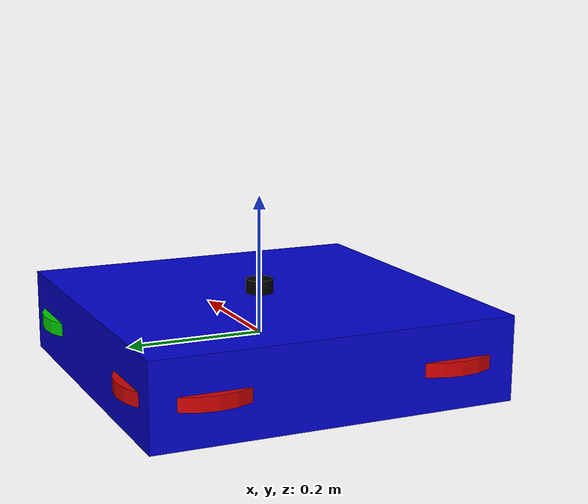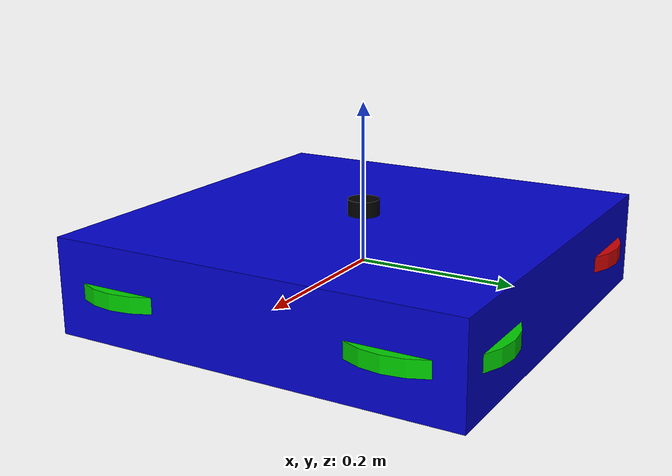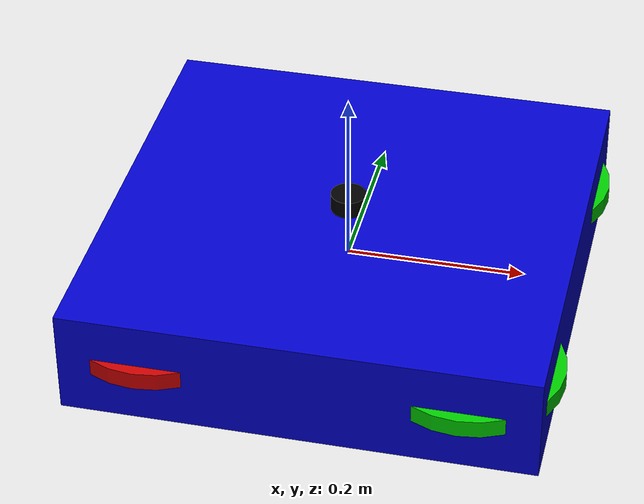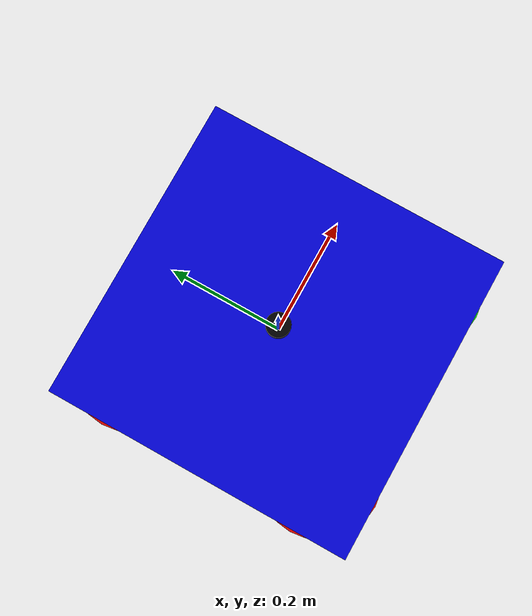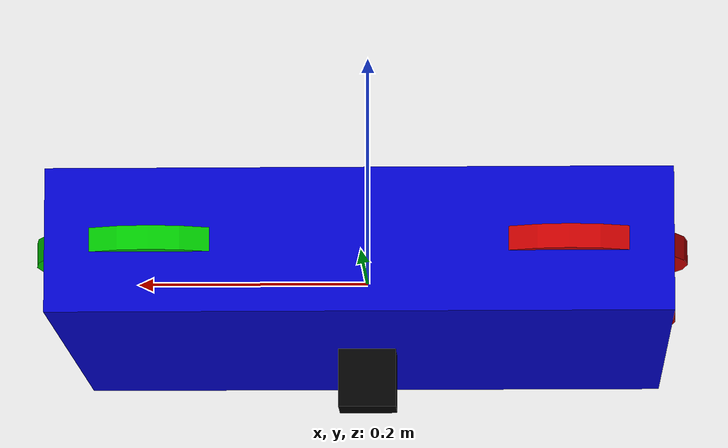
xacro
<?xml version="1.0"?>
<robot name="quadrotor" xmlns:xacro="http://www.ros.org/wiki/xacro">
  <!-- Include the URDF and Gazebo files -->
  <xacro:include filename="$(find quadrotor_description)/urdf/quadrotor.urdf.xacro" />
  <xacro:include filename="$(find quadrotor_description)/urdf/quadrotor.gazebo" />
</robot>

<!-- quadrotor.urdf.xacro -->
<robot name="quadrotor" xmlns:xacro="http://www.ros.org/wiki/xacro">
  <xacro:property name="pi" value="3.1415926535897931" />

  <!-- Main properties -->
  <xacro:property name="mass" value="1.477" />
  <xacro:property name="body_width" value="0.52" />
  <xacro:property name="body_height" value="0.12" />
  <xacro:property name="prop_radius" value="0.1" />
  <xacro:property name="motor_height" value="0.02" />

  <!-- Colors -->
  <material name="black">
    <color rgba="0.0 0.0 0.0 1.0"/>
  </material>
  <material name="blue">
    <color rgba="0.0 0.0 0.8 1.0"/>
  </material>
  <material name="green">
    <color rgba="0.0 0.8 0.0 1.0"/>
  </material>
  <material name="red">
    <color rgba="0.8 0.0 0.0 1.0"/>
  </material>

  <!-- Main quadrotor body -->
  <link name="base_link">
    <inertial>
      <mass value="${mass}" />
      <origin xyz="0 0 0" />
      <inertia ixx="0.01152" ixy="0.0" ixz="0.0" iyy="0.01152" iyz="0.0" izz="0.0218" />
    </inertial>

    <visual>
      <origin xyz="0 0 0" rpy="0 0 0" />
      <geometry>
        <box size="${body_width} ${body_width} ${body_height}"/>
      </geometry>
      <material name="blue"/>
    </visual>

    <collision>
      <origin xyz="0 0 0" rpy="0 0 0" />
      <geometry>
        <box size="${body_width} ${body_width} ${body_height}"/>
      </geometry>
    </collision>
  </link>

  <!-- Rotor links and joints -->
  <xacro:macro name="rotor" params="name parent x y color">
    <link name="${name}_link">
      <inertial>
        <mass value="0.025" />
        <origin xyz="0 0 0" />
        <inertia ixx="0.0001" ixy="0.0" ixz="0.0" iyy="0.0001" iyz="0.0" izz="0.0001" />
      </inertial>

      <visual>
        <origin xyz="0 0 0" rpy="0 0 0" />
        <geometry>
          <cylinder radius="${prop_radius}" length="${motor_height}"/>
        </geometry>
        <material name="${color}"/>
      </visual>

      <collision>
        <origin xyz="0 0 0" rpy="0 0 0" />
        <geometry>
          <cylinder radius="${prop_radius}" length="${motor_height}"/>
        </geometry>
      </collision>
    </link>

    <joint name="${name}_joint" type="fixed">
      <parent link="${parent}"/>
      <child link="${name}_link"/>
      <origin xyz="${x} ${y} 0" rpy="0 0 0"/>
    </joint>
  </xacro:macro>

  <!-- Create rotors -->
  <xacro:rotor name="front_right_rotor" parent="base_link" x="${body_width/3}" y="-${body_width/3}" color="green"/>
  <xacro:rotor name="front_left_rotor" parent="base_link" x="${body_width/3}" y="${body_width/3}" color="green"/>
  <xacro:rotor name="back_right_rotor" parent="base_link" x="-${body_width/3}" y="-${body_width/3}" color="red"/>
  <xacro:rotor name="back_left_rotor" parent="base_link" x="-${body_width/3}" y="${body_width/3}" color="red"/>

  <!-- Bottom camera -->
  <link name="bottom_camera_link">
    <inertial>
      <mass value="0.01" />
      <origin xyz="0 0 0" />
      <inertia ixx="0.0001" ixy="0.0" ixz="0.0" iyy="0.0001" iyz="0.0" izz="0.0001" />
    </inertial>

    <visual>
      <origin xyz="0 0 0" rpy="0 0 0" />
      <geometry>
        <box size="0.05 0.05 0.05"/>
      </geometry>
      <material name="black"/>
    </visual>

    <collision>
      <origin xyz="0 0 0" rpy="0 0 0" />
      <geometry>
        <box size="0.05 0.05 0.05"/>
      </geometry>
    </collision>
  </link>

  <joint name="bottom_camera_joint" type="fixed">
    <parent link="base_link"/>
    <child link="bottom_camera_link"/>
    <origin xyz="0 0 -${body_height/2 + 0.025}" rpy="0 ${pi/2} 0"/>
  </joint>

  <!-- IMU Link -->
  <link name="imu_link">
    <inertial>
      <mass value="0.01" />
      <origin xyz="0 0 0" />
      <inertia ixx="0.0001" ixy="0.0" ixz="0.0" iyy="0.0001" iyz="0.0" izz="0.0001" />
    </inertial>

    <visual>
      <origin xyz="0 0 0" rpy="0 0 0" />
      <geometry>
        <box size="0.02 0.02 0.02"/>
      </geometry>
      <material name="red"/>
    </visual>
  </link>

  <joint name="imu_joint" type="fixed">
    <parent link="base_link"/>
    <child link="imu_link"/>
    <origin xyz="0 0 ${body_height/4}" rpy="0 0 0"/>
  </joint>

  <!-- GPS Link -->
  <link name="gps_link">
    <inertial>
      <mass value="0.01" />
      <origin xyz="0 0 0" />
      <inertia ixx="0.0001" ixy="0.0" ixz="0.0" iyy="0.0001" iyz="0.0" izz="0.0001" />
    </inertial>

    <visual>
      <origin xyz="0 0 0" rpy="0 0 0" />
      <geometry>
        <cylinder radius="0.02" length="0.02"/>
      </geometry>
      <material name="black"/>
    </visual>
  </link>

  <joint name="gps_joint" type="fixed">
    <parent link="base_link"/>
    <child link="gps_link"/>
    <origin xyz="0 0 ${body_height/2 + 0.01}" rpy="0 0 0"/>
  </joint>
</robot>
